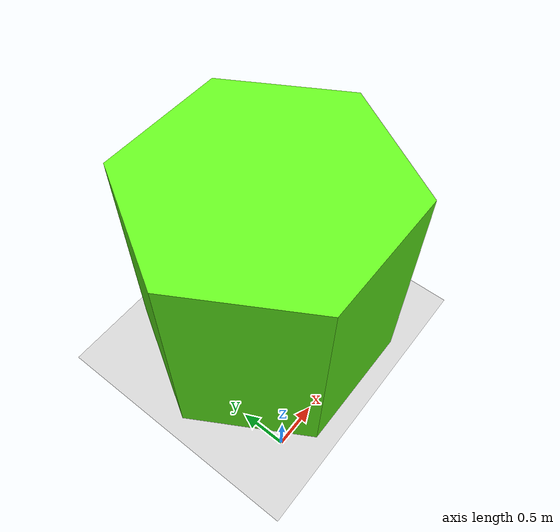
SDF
<?xml version="1.0"?>
<sdf version="1.8">
  <world name="leo_turtlebot_world">
    <physics name="1ms" type="ignored">
      <max_step_size>0.001</max_step_size>
      <real_time_factor>1.0</real_time_factor>
    </physics>

    <plugin
      filename="ignition-gazebo-physics-system"
      name="ignition::gazebo::systems::Physics">
    </plugin>
    <plugin
      filename="ignition-gazebo-sensors-system"
      name="ignition::gazebo::systems::Sensors">
      <render_engine>ogre2</render_engine>
    </plugin>
    <plugin
      filename="ignition-gazebo-scene-broadcaster-system"
      name="ignition::gazebo::systems::SceneBroadcaster">
    </plugin>
    <plugin
      filename="ignition-gazebo-user-commands-system"
      name="ignition::gazebo::systems::UserCommands">
    </plugin>

    <light name="sun" type="directional">
      <cast_shadows>true</cast_shadows>
      <pose>10 10 10 0 0 0</pose>
      <diffuse>0.8 0.8 0.8 1</diffuse>
      <specular>0.2 0.2 0.2 1</specular>
      <attenuation>
        <range>1000</range>
        <constant>0.9</constant>
        <linear>0.01</linear>
        <quadratic>0.001</quadratic>
      </attenuation>
      <direction>-0.5 0.1 -0.9</direction>
    </light>

    <model name="ground_plane">
      <static>true</static>
      <link name="link">
        <collision name="collision">
          <geometry>
            <plane>
              <normal>0 0 1</normal>
              <size>100 100</size>
            </plane>
          </geometry>
          <surface>
            <friction>
              <ode>
                <mu>50</mu>
              </ode>
              <bullet>
                <friction>1</friction>
                <friction2>1</friction2>
                <rolling_friction>0.1</rolling_friction>
              </bullet>
            </friction>
          </surface>
        </collision>
        <visual name="visual">
          <geometry>
            <plane>
              <normal>0 0 1</normal>
              <size>100 100</size>
            </plane>
          </geometry>
          <material>
            <ambient>0.8 0.8 0.8 1</ambient>
            <diffuse>0.8 0.8 0.8 1</diffuse>
            <specular>0.8 0.8 0.8 1</specular>
          </material>
        </visual>
      </link>
    </model>

    <model name="turtlebot_world">
      <pose>1 1 0.05 0 0 0</pose> <!-- Update the pose as needed -->
      <include>
        <uri>model://turtlebot3_world</uri> <!-- Ensure this path is correct for your model -->
      </include>
    </model>

  </world>
</sdf>

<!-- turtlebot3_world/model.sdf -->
<sdf version="1.7">
  <model name='turtlebot3_world_ignition'>
    <pose>0 0 0 0 0 0</pose>
    <static>1</static>

    <link name='hexagon_structure'>

      <collision name='collision'>
        <geometry>
          <mesh>
            <uri>model://turtlebot3_world/meshes/hexagon.dae</uri>
          </mesh>
        </geometry>
      </collision>

      <visual name='visual'>
        <cast_shadows>1</cast_shadows>
        <geometry>
          <mesh>
            <uri>model://turtlebot3_world/meshes/hexagon.dae</uri>
          </mesh>
        </geometry>
      </visual>

    </link>

    <link name='wall_structure'>

      <collision name='collision'>
        <geometry>
          <mesh>
            <uri>model://turtlebot3_world/meshes/wall.dae</uri>
          </mesh>
        </geometry>
      </collision>

      <visual name='visual'>
        <cast_shadows>1</cast_shadows>
        <geometry>
          <mesh>
            <uri>model://turtlebot3_world/meshes/wall.dae</uri>
          </mesh>
        </geometry>
      </visual>
    </link>

  </model>
</sdf>
